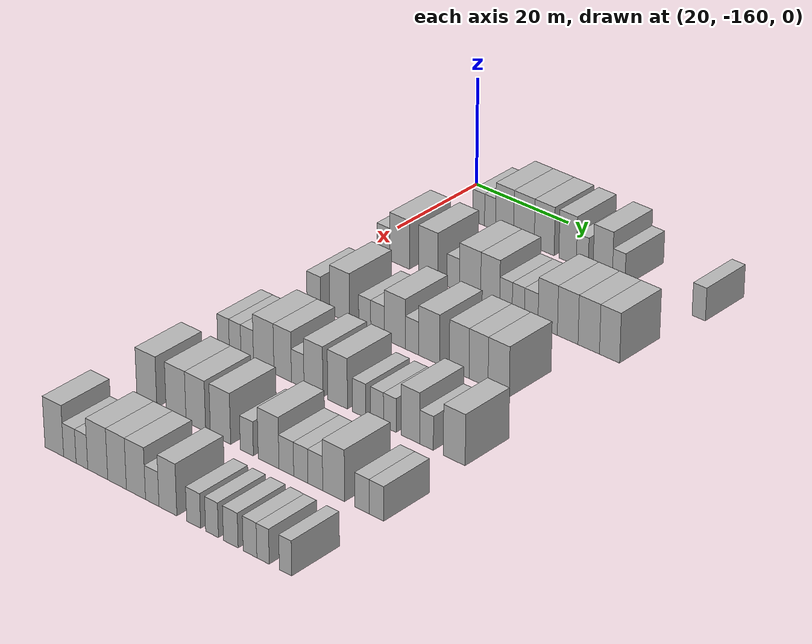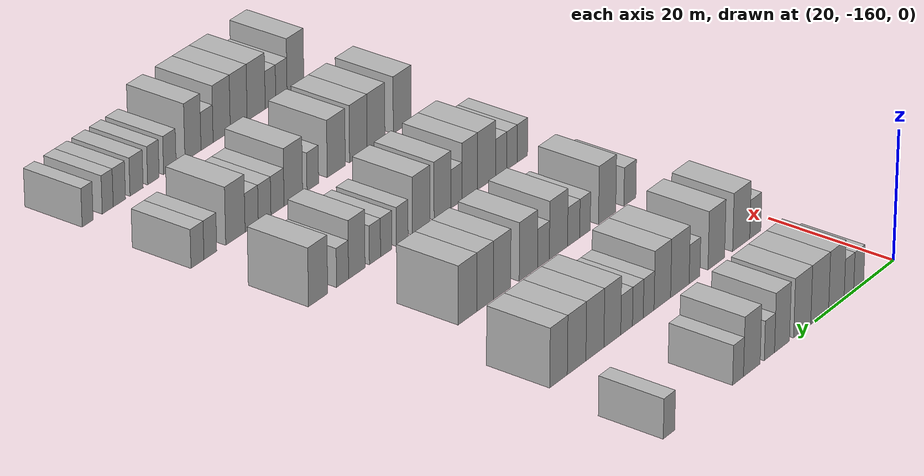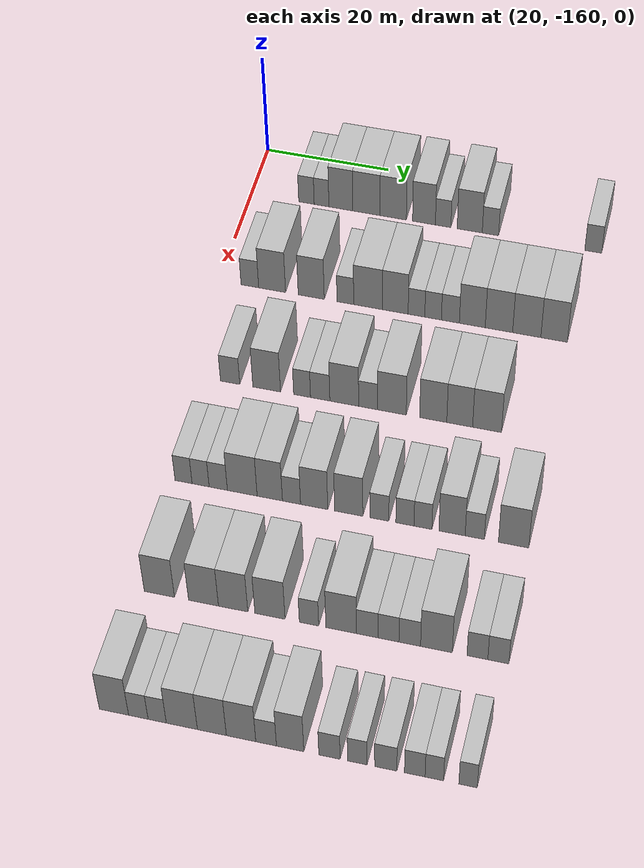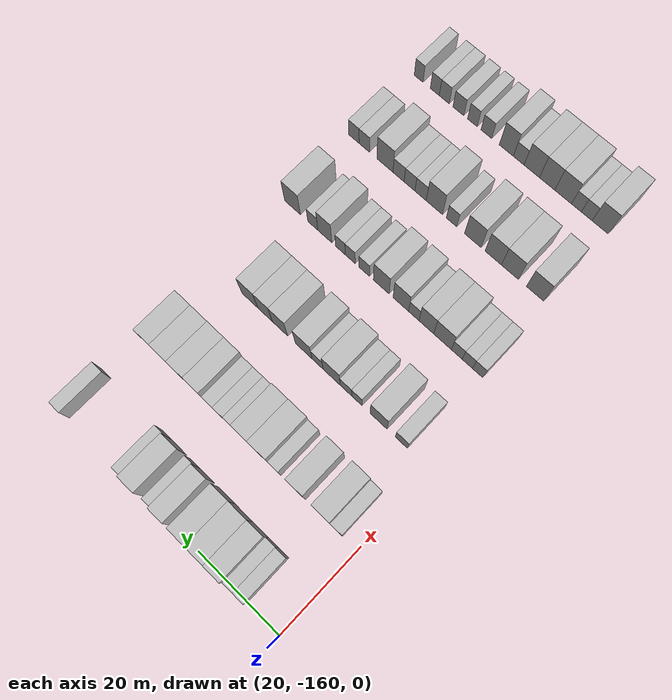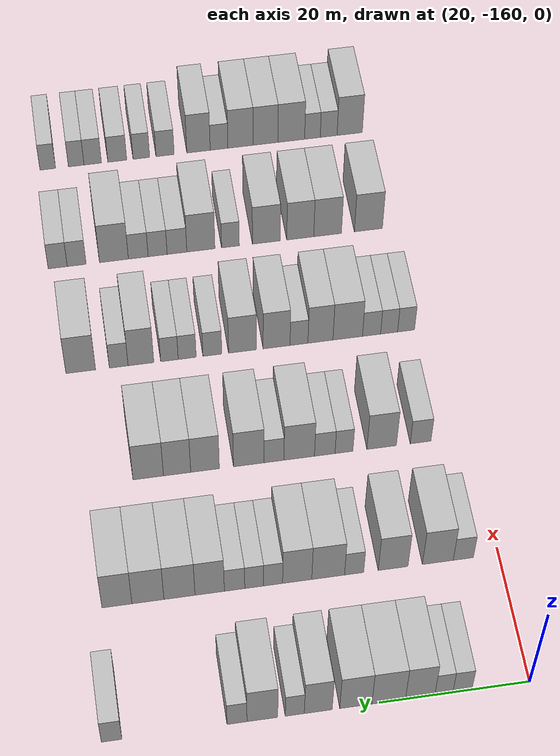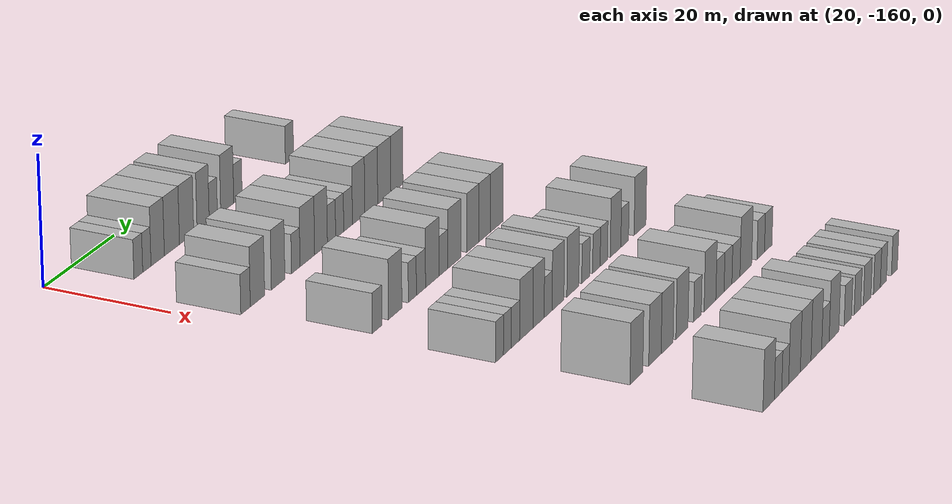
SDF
<sdf version="1.6">
 <world name="default">
  <model name="building_52">
   <static>1</static>
   <pose>25.0000 -150.9925 0 0.000000 0.000000 0.000000</pose>
   <link name="link">
    <pose>0 0 3.00 0 0 0</pose>
    <collision name="collision"><geometry><box><size>10.0000 2.5371 6.0000</size></box></geometry></collision>
    <visual name="visual">
     <cast_shadows>0</cast_shadows>
     <geometry><box><size>10.0000 2.5371 6.0000</size></box></geometry>
     <material>
      <script>
       <uri>model://HANNAS_wall/materials/scripts</uri>
       <uri>model://HANNAS_wall/materials/textures</uri>
       <name>vrc/HANNAS_wall</name>
      </script>
     </material>
    </visual>
   </link>
  </model>
  <model name="building_53">
   <static>1</static>
   <pose>25.0000 -148.5226 0 0.000000 0.000000 0.000000</pose>
   <link name="link">
    <pose>0 0 3.00 0 0 0</pose>
    <collision name="collision"><geometry><box><size>10.0000 2.4027 6.0000</size></box></geometry></collision>
    <visual name="visual">
     <cast_shadows>0</cast_shadows>
     <geometry><box><size>10.0000 2.4027 6.0000</size></box></geometry>
     <material>
      <script>
       <uri>model://HANNAS_wall/materials/scripts</uri>
       <uri>model://HANNAS_wall/materials/textures</uri>
       <name>vrc/HANNAS_wall</name>
      </script>
     </material>
    </visual>
   </link>
  </model>
  <model name="building_54">
   <static>1</static>
   <pose>25.0000 -145.3748 0 0.000000 0.000000 0.000000</pose>
   <link name="link">
    <pose>0 0 4.50 0 0 0</pose>
    <collision name="collision"><geometry><box><size>10.0000 3.8929 9.0000</size></box></geometry></collision>
    <visual name="visual">
     <cast_shadows>0</cast_shadows>
     <geometry><box><size>10.0000 3.8929 9.0000</size></box></geometry>
     <material>
      <script>
       <uri>model://HANNAS_wall/materials/scripts</uri>
       <uri>model://HANNAS_wall/materials/textures</uri>
       <name>vrc/HANNAS_wall</name>
      </script>
     </material>
    </visual>
   </link>
  </model>
  <model name="building_55">
   <static>1</static>
   <pose>25.0000 -141.2038 0 0.000000 0.000000 0.000000</pose>
   <link name="link">
    <pose>0 0 4.50 0 0 0</pose>
    <collision name="collision"><geometry><box><size>10.0000 4.4492 9.0000</size></box></geometry></collision>
    <visual name="visual">
     <cast_shadows>0</cast_shadows>
     <geometry><box><size>10.0000 4.4492 9.0000</size></box></geometry>
     <material>
      <script>
       <uri>model://HANNAS_wall/materials/scripts</uri>
       <uri>model://HANNAS_wall/materials/textures</uri>
       <name>vrc/HANNAS_wall</name>
      </script>
     </material>
    </visual>
   </link>
  </model>
  <model name="building_56">
   <static>1</static>
   <pose>25.0000 -136.8596 0 0.000000 0.000000 0.000000</pose>
   <link name="link">
    <pose>0 0 4.50 0 0 0</pose>
    <collision name="collision"><geometry><box><size>10.0000 4.2390 9.0000</size></box></geometry></collision>
    <visual name="visual">
     <cast_shadows>0</cast_shadows>
     <geometry><box><size>10.0000 4.2390 9.0000</size></box></geometry>
     <material>
      <script>
       <uri>model://HANNAS_wall/materials/scripts</uri>
       <uri>model://HANNAS_wall/materials/textures</uri>
       <name>vrc/HANNAS_wall</name>
      </script>
     </material>
    </visual>
   </link>
  </model>
  <model name="building_57">
   <static>1</static>
   <pose>25.0000 -131.9018 0 0.000000 0.000000 0.000000</pose>
   <link name="link">
    <pose>0 0 4.50 0 0 0</pose>
    <collision name="collision"><geometry><box><size>10.0000 3.6766 9.0000</size></box></geometry></collision>
    <visual name="visual">
     <cast_shadows>0</cast_shadows>
     <geometry><box><size>10.0000 3.6766 9.0000</size></box></geometry>
     <material>
      <script>
       <uri>model://HANNAS_wall/materials/scripts</uri>
       <uri>model://HANNAS_wall/materials/textures</uri>
       <name>vrc/HANNAS_wall</name>
      </script>
     </material>
    </visual>
   </link>
  </model>
  <model name="building_58">
   <static>1</static>
   <pose>25.0000 -128.8138 0 0.000000 0.000000 0.000000</pose>
   <link name="link">
    <pose>0 0 3.00 0 0 0</pose>
    <collision name="collision"><geometry><box><size>10.0000 2.4995 6.0000</size></box></geometry></collision>
    <visual name="visual">
     <cast_shadows>0</cast_shadows>
     <geometry><box><size>10.0000 2.4995 6.0000</size></box></geometry>
     <material>
      <script>
       <uri>model://HANNAS_wall/materials/scripts</uri>
       <uri>model://HANNAS_wall/materials/textures</uri>
       <name>vrc/HANNAS_wall</name>
      </script>
     </material>
    </visual>
   </link>
  </model>
  <model name="building_59">
   <static>1</static>
   <pose>25.0000 -124.5535 0 0.000000 0.000000 0.000000</pose>
   <link name="link">
    <pose>0 0 4.50 0 0 0</pose>
    <collision name="collision"><geometry><box><size>10.0000 4.0211 9.0000</size></box></geometry></collision>
    <visual name="visual">
     <cast_shadows>0</cast_shadows>
     <geometry><box><size>10.0000 4.0211 9.0000</size></box></geometry>
     <material>
      <script>
       <uri>model://HANNAS_wall/materials/scripts</uri>
       <uri>model://HANNAS_wall/materials/textures</uri>
       <name>vrc/HANNAS_wall</name>
      </script>
     </material>
    </visual>
   </link>
  </model>
  <model name="building_60">
   <static>1</static>
   <pose>25.0000 -121.2376 0 0.000000 0.000000 0.000000</pose>
   <link name="link">
    <pose>0 0 3.00 0 0 0</pose>
    <collision name="collision"><geometry><box><size>10.0000 2.6107 6.0000</size></box></geometry></collision>
    <visual name="visual">
     <cast_shadows>0</cast_shadows>
     <geometry><box><size>10.0000 2.6107 6.0000</size></box></geometry>
     <material>
      <script>
       <uri>model://HANNAS_wall/materials/scripts</uri>
       <uri>model://HANNAS_wall/materials/textures</uri>
       <name>vrc/HANNAS_wall</name>
      </script>
     </material>
    </visual>
   </link>
  </model>
  <model name="building_61">
   <static>1</static>
   <pose>25.0000 -104.9266 0 0.000000 0.000000 0.000000</pose>
   <link name="link">
    <pose>0 0 3.00 0 0 0</pose>
    <collision name="collision"><geometry><box><size>10.0000 2.6704 6.0000</size></box></geometry></collision>
    <visual name="visual">
     <cast_shadows>0</cast_shadows>
     <geometry><box><size>10.0000 2.6704 6.0000</size></box></geometry>
     <material>
      <script>
       <uri>model://HANNAS_wall/materials/scripts</uri>
       <uri>model://HANNAS_wall/materials/textures</uri>
       <name>vrc/HANNAS_wall</name>
      </script>
     </material>
    </visual>
   </link>
  </model>
  <model name="building_231">
   <static>1</static>
   <pose>44.0000 -155.1014 0 0.000000 0.000000 0.000000</pose>
   <link name="link">
    <pose>0 0 3.00 0 0 0</pose>
    <collision name="collision"><geometry><box><size>10.0000 2.8008 6.0000</size></box></geometry></collision>
    <visual name="visual">
     <cast_shadows>0</cast_shadows>
     <geometry><box><size>10.0000 2.8008 6.0000</size></box></geometry>
     <material>
      <script>
       <uri>model://HANNAS_wall/materials/scripts</uri>
       <uri>model://HANNAS_wall/materials/textures</uri>
       <name>vrc/HANNAS_wall</name>
      </script>
     </material>
    </visual>
   </link>
  </model>
  <model name="building_232">
   <static>1</static>
   <pose>44.0000 -151.5653 0 0.000000 0.000000 0.000000</pose>
   <link name="link">
    <pose>0 0 4.50 0 0 0</pose>
    <collision name="collision"><geometry><box><size>10.0000 4.2713 9.0000</size></box></geometry></collision>
    <visual name="visual">
     <cast_shadows>0</cast_shadows>
     <geometry><box><size>10.0000 4.2713 9.0000</size></box></geometry>
     <material>
      <script>
       <uri>model://HANNAS_wall/materials/scripts</uri>
       <uri>model://HANNAS_wall/materials/textures</uri>
       <name>vrc/HANNAS_wall</name>
      </script>
     </material>
    </visual>
   </link>
  </model>
  <model name="building_233">
   <static>1</static>
   <pose>44.0000 -145.3773 0 0.000000 0.000000 0.000000</pose>
   <link name="link">
    <pose>0 0 4.50 0 0 0</pose>
    <collision name="collision"><geometry><box><size>10.0000 4.1048 9.0000</size></box></geometry></collision>
    <visual name="visual">
     <cast_shadows>0</cast_shadows>
     <geometry><box><size>10.0000 4.1048 9.0000</size></box></geometry>
     <material>
      <script>
       <uri>model://HANNAS_wall/materials/scripts</uri>
       <uri>model://HANNAS_wall/materials/textures</uri>
       <name>vrc/HANNAS_wall</name>
      </script>
     </material>
    </visual>
   </link>
  </model>
  <model name="building_234">
   <static>1</static>
   <pose>44.0000 -140.0093 0 0.000000 0.000000 0.000000</pose>
   <link name="link">
    <pose>0 0 3.00 0 0 0</pose>
    <collision name="collision"><geometry><box><size>10.0000 2.6312 6.0000</size></box></geometry></collision>
    <visual name="visual">
     <cast_shadows>0</cast_shadows>
     <geometry><box><size>10.0000 2.6312 6.0000</size></box></geometry>
     <material>
      <script>
       <uri>model://HANNAS_wall/materials/scripts</uri>
       <uri>model://HANNAS_wall/materials/textures</uri>
       <name>vrc/HANNAS_wall</name>
      </script>
     </material>
    </visual>
   </link>
  </model>
  <model name="building_235">
   <static>1</static>
   <pose>44.0000 -136.4443 0 0.000000 0.000000 0.000000</pose>
   <link name="link">
    <pose>0 0 4.50 0 0 0</pose>
    <collision name="collision"><geometry><box><size>10.0000 4.4987 9.0000</size></box></geometry></collision>
    <visual name="visual">
     <cast_shadows>0</cast_shadows>
     <geometry><box><size>10.0000 4.4987 9.0000</size></box></geometry>
     <material>
      <script>
       <uri>model://HANNAS_wall/materials/scripts</uri>
       <uri>model://HANNAS_wall/materials/textures</uri>
       <name>vrc/HANNAS_wall</name>
      </script>
     </material>
    </visual>
   </link>
  </model>
  <model name="building_236">
   <static>1</static>
   <pose>44.0000 -132.1968 0 0.000000 0.000000 0.000000</pose>
   <link name="link">
    <pose>0 0 4.50 0 0 0</pose>
    <collision name="collision"><geometry><box><size>10.0000 3.9964 9.0000</size></box></geometry></collision>
    <visual name="visual">
     <cast_shadows>0</cast_shadows>
     <geometry><box><size>10.0000 3.9964 9.0000</size></box></geometry>
     <material>
      <script>
       <uri>model://HANNAS_wall/materials/scripts</uri>
       <uri>model://HANNAS_wall/materials/textures</uri>
       <name>vrc/HANNAS_wall</name>
      </script>
     </material>
    </visual>
   </link>
  </model>
  <model name="building_237">
   <static>1</static>
   <pose>44.0000 -128.9014 0 0.000000 0.000000 0.000000</pose>
   <link name="link">
    <pose>0 0 3.00 0 0 0</pose>
    <collision name="collision"><geometry><box><size>10.0000 2.5943 6.0000</size></box></geometry></collision>
    <visual name="visual">
     <cast_shadows>0</cast_shadows>
     <geometry><box><size>10.0000 2.5943 6.0000</size></box></geometry>
     <material>
      <script>
       <uri>model://HANNAS_wall/materials/scripts</uri>
       <uri>model://HANNAS_wall/materials/textures</uri>
       <name>vrc/HANNAS_wall</name>
      </script>
     </material>
    </visual>
   </link>
  </model>
  <model name="building_238">
   <static>1</static>
   <pose>44.0000 -126.3205 0 0.000000 0.000000 0.000000</pose>
   <link name="link">
    <pose>0 0 3.00 0 0 0</pose>
    <collision name="collision"><geometry><box><size>10.0000 2.5675 6.0000</size></box></geometry></collision>
    <visual name="visual">
     <cast_shadows>0</cast_shadows>
     <geometry><box><size>10.0000 2.5675 6.0000</size></box></geometry>
     <material>
      <script>
       <uri>model://HANNAS_wall/materials/scripts</uri>
       <uri>model://HANNAS_wall/materials/textures</uri>
       <name>vrc/HANNAS_wall</name>
      </script>
     </material>
    </visual>
   </link>
  </model>
  <model name="building_239">
   <static>1</static>
   <pose>44.0000 -123.6464 0 0.000000 0.000000 0.000000</pose>
   <link name="link">
    <pose>0 0 3.00 0 0 0</pose>
    <collision name="collision"><geometry><box><size>10.0000 2.7808 6.0000</size></box></geometry></collision>
    <visual name="visual">
     <cast_shadows>0</cast_shadows>
     <geometry><box><size>10.0000 2.7808 6.0000</size></box></geometry>
     <material>
      <script>
       <uri>model://HANNAS_wall/materials/scripts</uri>
       <uri>model://HANNAS_wall/materials/textures</uri>
       <name>vrc/HANNAS_wall</name>
      </script>
     </material>
    </visual>
   </link>
  </model>
  <model name="building_240">
   <static>1</static>
   <pose>44.0000 -120.2646 0 0.000000 0.000000 0.000000</pose>
   <link name="link">
    <pose>0 0 4.50 0 0 0</pose>
    <collision name="collision"><geometry><box><size>10.0000 3.9827 9.0000</size></box></geometry></collision>
    <visual name="visual">
     <cast_shadows>0</cast_shadows>
     <geometry><box><size>10.0000 3.9827 9.0000</size></box></geometry>
     <material>
      <script>
       <uri>model://HANNAS_wall/materials/scripts</uri>
       <uri>model://HANNAS_wall/materials/textures</uri>
       <name>vrc/HANNAS_wall</name>
      </script>
     </material>
    </visual>
   </link>
  </model>
  <model name="building_241">
   <static>1</static>
   <pose>44.0000 -116.1656 0 0.000000 0.000000 0.000000</pose>
   <link name="link">
    <pose>0 0 4.50 0 0 0</pose>
    <collision name="collision"><geometry><box><size>10.0000 4.2153 9.0000</size></box></geometry></collision>
    <visual name="visual">
     <cast_shadows>0</cast_shadows>
     <geometry><box><size>10.0000 4.2153 9.0000</size></box></geometry>
     <material>
      <script>
       <uri>model://HANNAS_wall/materials/scripts</uri>
       <uri>model://HANNAS_wall/materials/textures</uri>
       <name>vrc/HANNAS_wall</name>
      </script>
     </material>
    </visual>
   </link>
  </model>
  <model name="building_242">
   <static>1</static>
   <pose>44.0000 -111.8969 0 0.000000 0.000000 0.000000</pose>
   <link name="link">
    <pose>0 0 4.50 0 0 0</pose>
    <collision name="collision"><geometry><box><size>10.0000 4.3223 9.0000</size></box></geometry></collision>
    <visual name="visual">
     <cast_shadows>0</cast_shadows>
     <geometry><box><size>10.0000 4.3223 9.0000</size></box></geometry>
     <material>
      <script>
       <uri>model://HANNAS_wall/materials/scripts</uri>
       <uri>model://HANNAS_wall/materials/textures</uri>
       <name>vrc/HANNAS_wall</name>
      </script>
     </material>
    </visual>
   </link>
  </model>
  <model name="building_243">
   <static>1</static>
   <pose>44.0000 -107.7129 0 0.000000 0.000000 0.000000</pose>
   <link name="link">
    <pose>0 0 4.50 0 0 0</pose>
    <collision name="collision"><geometry><box><size>10.0000 4.0456 9.0000</size></box></geometry></collision>
    <visual name="visual">
     <cast_shadows>0</cast_shadows>
     <geometry><box><size>10.0000 4.0456 9.0000</size></box></geometry>
     <material>
      <script>
       <uri>model://HANNAS_wall/materials/scripts</uri>
       <uri>model://HANNAS_wall/materials/textures</uri>
       <name>vrc/HANNAS_wall</name>
      </script>
     </material>
    </visual>
   </link>
  </model>
  <model name="building_396">
   <static>1</static>
   <pose>63.0000 -152.9226 0 0.000000 0.000000 0.000000</pose>
   <link name="link">
    <pose>0 0 3.00 0 0 0</pose>
    <collision name="collision"><geometry><box><size>10.0000 2.9667 6.0000</size></box></geometry></collision>
    <visual name="visual">
     <cast_shadows>0</cast_shadows>
     <geometry><box><size>10.0000 2.9667 6.0000</size></box></geometry>
     <material>
      <script>
       <uri>model://HANNAS_wall/materials/scripts</uri>
       <uri>model://HANNAS_wall/materials/textures</uri>
       <name>vrc/HANNAS_wall</name>
      </script>
     </material>
    </visual>
   </link>
  </model>
  <model name="building_397">
   <static>1</static>
   <pose>63.0000 -147.3269 0 0.000000 0.000000 0.000000</pose>
   <link name="link">
    <pose>0 0 4.50 0 0 0</pose>
    <collision name="collision"><geometry><box><size>10.0000 4.2247 9.0000</size></box></geometry></collision>
    <visual name="visual">
     <cast_shadows>0</cast_shadows>
     <geometry><box><size>10.0000 4.2247 9.0000</size></box></geometry>
     <material>
      <script>
       <uri>model://HANNAS_wall/materials/scripts</uri>
       <uri>model://HANNAS_wall/materials/textures</uri>
       <name>vrc/HANNAS_wall</name>
      </script>
     </material>
    </visual>
   </link>
  </model>
  <model name="building_398">
   <static>1</static>
   <pose>63.0000 -141.9367 0 0.000000 0.000000 0.000000</pose>
   <link name="link">
    <pose>0 0 3.00 0 0 0</pose>
    <collision name="collision"><geometry><box><size>10.0000 2.5558 6.0000</size></box></geometry></collision>
    <visual name="visual">
     <cast_shadows>0</cast_shadows>
     <geometry><box><size>10.0000 2.5558 6.0000</size></box></geometry>
     <material>
      <script>
       <uri>model://HANNAS_wall/materials/scripts</uri>
       <uri>model://HANNAS_wall/materials/textures</uri>
       <name>vrc/HANNAS_wall</name>
      </script>
     </material>
    </visual>
   </link>
  </model>
  <model name="building_399">
   <static>1</static>
   <pose>63.0000 -139.1932 0 0.000000 0.000000 0.000000</pose>
   <link name="link">
    <pose>0 0 3.00 0 0 0</pose>
    <collision name="collision"><geometry><box><size>10.0000 2.9312 6.0000</size></box></geometry></collision>
    <visual name="visual">
     <cast_shadows>0</cast_shadows>
     <geometry><box><size>10.0000 2.9312 6.0000</size></box></geometry>
     <material>
      <script>
       <uri>model://HANNAS_wall/materials/scripts</uri>
       <uri>model://HANNAS_wall/materials/textures</uri>
       <name>vrc/HANNAS_wall</name>
      </script>
     </material>
    </visual>
   </link>
  </model>
  <model name="building_400">
   <static>1</static>
   <pose>63.0000 -135.5485 0 0.000000 0.000000 0.000000</pose>
   <link name="link">
    <pose>0 0 4.50 0 0 0</pose>
    <collision name="collision"><geometry><box><size>10.0000 4.3580 9.0000</size></box></geometry></collision>
    <visual name="visual">
     <cast_shadows>0</cast_shadows>
     <geometry><box><size>10.0000 4.3580 9.0000</size></box></geometry>
     <material>
      <script>
       <uri>model://HANNAS_wall/materials/scripts</uri>
       <uri>model://HANNAS_wall/materials/textures</uri>
       <name>vrc/HANNAS_wall</name>
      </script>
     </material>
    </visual>
   </link>
  </model>
  <model name="building_401">
   <static>1</static>
   <pose>63.0000 -131.9599 0 0.000000 0.000000 0.000000</pose>
   <link name="link">
    <pose>0 0 3.00 0 0 0</pose>
    <collision name="collision"><geometry><box><size>10.0000 2.8192 6.0000</size></box></geometry></collision>
    <visual name="visual">
     <cast_shadows>0</cast_shadows>
     <geometry><box><size>10.0000 2.8192 6.0000</size></box></geometry>
     <material>
      <script>
       <uri>model://HANNAS_wall/materials/scripts</uri>
       <uri>model://HANNAS_wall/materials/textures</uri>
       <name>vrc/HANNAS_wall</name>
      </script>
     </material>
    </visual>
   </link>
  </model>
  <model name="building_402">
   <static>1</static>
   <pose>63.0000 -128.3850 0 0.000000 0.000000 0.000000</pose>
   <link name="link">
    <pose>0 0 4.50 0 0 0</pose>
    <collision name="collision"><geometry><box><size>10.0000 4.3306 9.0000</size></box></geometry></collision>
    <visual name="visual">
     <cast_shadows>0</cast_shadows>
     <geometry><box><size>10.0000 4.3306 9.0000</size></box></geometry>
     <material>
      <script>
       <uri>model://HANNAS_wall/materials/scripts</uri>
       <uri>model://HANNAS_wall/materials/textures</uri>
       <name>vrc/HANNAS_wall</name>
      </script>
     </material>
    </visual>
   </link>
  </model>
  <model name="building_403">
   <static>1</static>
   <pose>63.0000 -122.1996 0 0.000000 0.000000 0.000000</pose>
   <link name="link">
    <pose>0 0 4.50 0 0 0</pose>
    <collision name="collision"><geometry><box><size>10.0000 4.0402 9.0000</size></box></geometry></collision>
    <visual name="visual">
     <cast_shadows>0</cast_shadows>
     <geometry><box><size>10.0000 4.0402 9.0000</size></box></geometry>
     <material>
      <script>
       <uri>model://HANNAS_wall/materials/scripts</uri>
       <uri>model://HANNAS_wall/materials/textures</uri>
       <name>vrc/HANNAS_wall</name>
      </script>
     </material>
    </visual>
   </link>
  </model>
  <model name="building_404">
   <static>1</static>
   <pose>63.0000 -118.2565 0 0.000000 0.000000 0.000000</pose>
   <link name="link">
    <pose>0 0 4.50 0 0 0</pose>
    <collision name="collision"><geometry><box><size>10.0000 3.8459 9.0000</size></box></geometry></collision>
    <visual name="visual">
     <cast_shadows>0</cast_shadows>
     <geometry><box><size>10.0000 3.8459 9.0000</size></box></geometry>
     <material>
      <script>
       <uri>model://HANNAS_wall/materials/scripts</uri>
       <uri>model://HANNAS_wall/materials/textures</uri>
       <name>vrc/HANNAS_wall</name>
      </script>
     </material>
    </visual>
   </link>
  </model>
  <model name="building_405">
   <static>1</static>
   <pose>63.0000 -114.1934 0 0.000000 0.000000 0.000000</pose>
   <link name="link">
    <pose>0 0 4.50 0 0 0</pose>
    <collision name="collision"><geometry><box><size>10.0000 4.2804 9.0000</size></box></geometry></collision>
    <visual name="visual">
     <cast_shadows>0</cast_shadows>
     <geometry><box><size>10.0000 4.2804 9.0000</size></box></geometry>
     <material>
      <script>
       <uri>model://HANNAS_wall/materials/scripts</uri>
       <uri>model://HANNAS_wall/materials/textures</uri>
       <name>vrc/HANNAS_wall</name>
      </script>
     </material>
    </visual>
   </link>
  </model>
  <model name="building_559">
   <static>1</static>
   <pose>82.0000 -154.4892 0 0.000000 0.000000 0.000000</pose>
   <link name="link">
    <pose>0 0 3.00 0 0 0</pose>
    <collision name="collision"><geometry><box><size>10.0000 2.5269 6.0000</size></box></geometry></collision>
    <visual name="visual">
     <cast_shadows>0</cast_shadows>
     <geometry><box><size>10.0000 2.5269 6.0000</size></box></geometry>
     <material>
      <script>
       <uri>model://HANNAS_wall/materials/scripts</uri>
       <uri>model://HANNAS_wall/materials/textures</uri>
       <name>vrc/HANNAS_wall</name>
      </script>
     </material>
    </visual>
   </link>
  </model>
  <model name="building_560">
   <static>1</static>
   <pose>82.0000 -151.9626 0 0.000000 0.000000 0.000000</pose>
   <link name="link">
    <pose>0 0 3.00 0 0 0</pose>
    <collision name="collision"><geometry><box><size>10.0000 2.5264 6.0000</size></box></geometry></collision>
    <visual name="visual">
     <cast_shadows>0</cast_shadows>
     <geometry><box><size>10.0000 2.5264 6.0000</size></box></geometry>
     <material>
      <script>
       <uri>model://HANNAS_wall/materials/scripts</uri>
       <uri>model://HANNAS_wall/materials/textures</uri>
       <name>vrc/HANNAS_wall</name>
      </script>
     </material>
    </visual>
   </link>
  </model>
  <model name="building_561">
   <static>1</static>
   <pose>82.0000 -149.3520 0 0.000000 0.000000 0.000000</pose>
   <link name="link">
    <pose>0 0 3.00 0 0 0</pose>
    <collision name="collision"><geometry><box><size>10.0000 2.6948 6.0000</size></box></geometry></collision>
    <visual name="visual">
     <cast_shadows>0</cast_shadows>
     <geometry><box><size>10.0000 2.6948 6.0000</size></box></geometry>
     <material>
      <script>
       <uri>model://HANNAS_wall/materials/scripts</uri>
       <uri>model://HANNAS_wall/materials/textures</uri>
       <name>vrc/HANNAS_wall</name>
      </script>
     </material>
    </visual>
   </link>
  </model>
  <model name="building_562">
   <static>1</static>
   <pose>82.0000 -145.8158 0 0.000000 0.000000 0.000000</pose>
   <link name="link">
    <pose>0 0 4.50 0 0 0</pose>
    <collision name="collision"><geometry><box><size>10.0000 4.3777 9.0000</size></box></geometry></collision>
    <visual name="visual">
     <cast_shadows>0</cast_shadows>
     <geometry><box><size>10.0000 4.3777 9.0000</size></box></geometry>
     <material>
      <script>
       <uri>model://HANNAS_wall/materials/scripts</uri>
       <uri>model://HANNAS_wall/materials/textures</uri>
       <name>vrc/HANNAS_wall</name>
      </script>
     </material>
    </visual>
   </link>
  </model>
  <model name="building_563">
   <static>1</static>
   <pose>82.0000 -141.7719 0 0.000000 0.000000 0.000000</pose>
   <link name="link">
    <pose>0 0 4.50 0 0 0</pose>
    <collision name="collision"><geometry><box><size>10.0000 3.7101 9.0000</size></box></geometry></collision>
    <visual name="visual">
     <cast_shadows>0</cast_shadows>
     <geometry><box><size>10.0000 3.7101 9.0000</size></box></geometry>
     <material>
      <script>
       <uri>model://HANNAS_wall/materials/scripts</uri>
       <uri>model://HANNAS_wall/materials/textures</uri>
       <name>vrc/HANNAS_wall</name>
      </script>
     </material>
    </visual>
   </link>
  </model>
  <model name="building_564">
   <static>1</static>
   <pose>82.0000 -138.5932 0 0.000000 0.000000 0.000000</pose>
   <link name="link">
    <pose>0 0 3.00 0 0 0</pose>
    <collision name="collision"><geometry><box><size>10.0000 2.6472 6.0000</size></box></geometry></collision>
    <visual name="visual">
     <cast_shadows>0</cast_shadows>
     <geometry><box><size>10.0000 2.6472 6.0000</size></box></geometry>
     <material>
      <script>
       <uri>model://HANNAS_wall/materials/scripts</uri>
       <uri>model://HANNAS_wall/materials/textures</uri>
       <name>vrc/HANNAS_wall</name>
      </script>
     </material>
    </visual>
   </link>
  </model>
  <model name="building_565">
   <static>1</static>
   <pose>82.0000 -135.2848 0 0.000000 0.000000 0.000000</pose>
   <link name="link">
    <pose>0 0 4.50 0 0 0</pose>
    <collision name="collision"><geometry><box><size>10.0000 3.9697 9.0000</size></box></geometry></collision>
    <visual name="visual">
     <cast_shadows>0</cast_shadows>
     <geometry><box><size>10.0000 3.9697 9.0000</size></box></geometry>
     <material>
      <script>
       <uri>model://HANNAS_wall/materials/scripts</uri>
       <uri>model://HANNAS_wall/materials/textures</uri>
       <name>vrc/HANNAS_wall</name>
      </script>
     </material>
    </visual>
   </link>
  </model>
  <model name="building_566">
   <static>1</static>
   <pose>82.0000 -130.2576 0 0.000000 0.000000 0.000000</pose>
   <link name="link">
    <pose>0 0 4.50 0 0 0</pose>
    <collision name="collision"><geometry><box><size>10.0000 4.0847 9.0000</size></box></geometry></collision>
    <visual name="visual">
     <cast_shadows>0</cast_shadows>
     <geometry><box><size>10.0000 4.0847 9.0000</size></box></geometry>
     <material>
      <script>
       <uri>model://HANNAS_wall/materials/scripts</uri>
       <uri>model://HANNAS_wall/materials/textures</uri>
       <name>vrc/HANNAS_wall</name>
      </script>
     </material>
    </visual>
   </link>
  </model>
  <model name="building_567">
   <static>1</static>
   <pose>82.0000 -125.8382 0 0.000000 0.000000 0.000000</pose>
   <link name="link">
    <pose>0 0 3.00 0 0 0</pose>
    <collision name="collision"><geometry><box><size>10.0000 2.7541 6.0000</size></box></geometry></collision>
    <visual name="visual">
     <cast_shadows>0</cast_shadows>
     <geometry><box><size>10.0000 2.7541 6.0000</size></box></geometry>
     <material>
      <script>
       <uri>model://HANNAS_wall/materials/scripts</uri>
       <uri>model://HANNAS_wall/materials/textures</uri>
       <name>vrc/HANNAS_wall</name>
      </script>
     </material>
    </visual>
   </link>
  </model>
  <model name="building_568">
   <static>1</static>
   <pose>82.0000 -122.1472 0 0.000000 0.000000 0.000000</pose>
   <link name="link">
    <pose>0 0 3.00 0 0 0</pose>
    <collision name="collision"><geometry><box><size>10.0000 2.6281 6.0000</size></box></geometry></collision>
    <visual name="visual">
     <cast_shadows>0</cast_shadows>
     <geometry><box><size>10.0000 2.6281 6.0000</size></box></geometry>
     <material>
      <script>
       <uri>model://HANNAS_wall/materials/scripts</uri>
       <uri>model://HANNAS_wall/materials/textures</uri>
       <name>vrc/HANNAS_wall</name>
      </script>
     </material>
    </visual>
   </link>
  </model>
  <model name="building_569">
   <static>1</static>
   <pose>82.0000 -119.5523 0 0.000000 0.000000 0.000000</pose>
   <link name="link">
    <pose>0 0 3.00 0 0 0</pose>
    <collision name="collision"><geometry><box><size>10.0000 2.5617 6.0000</size></box></geometry></collision>
    <visual name="visual">
     <cast_shadows>0</cast_shadows>
     <geometry><box><size>10.0000 2.5617 6.0000</size></box></geometry>
     <material>
      <script>
       <uri>model://HANNAS_wall/materials/scripts</uri>
       <uri>model://HANNAS_wall/materials/textures</uri>
       <name>vrc/HANNAS_wall</name>
      </script>
     </material>
    </visual>
   </link>
  </model>
  <model name="building_570">
   <static>1</static>
   <pose>82.0000 -115.3954 0 0.000000 0.000000 0.000000</pose>
   <link name="link">
    <pose>0 0 4.50 0 0 0</pose>
    <collision name="collision"><geometry><box><size>10.0000 3.7520 9.0000</size></box></geometry></collision>
    <visual name="visual">
     <cast_shadows>0</cast_shadows>
     <geometry><box><size>10.0000 3.7520 9.0000</size></box></geometry>
     <material>
      <script>
       <uri>model://HANNAS_wall/materials/scripts</uri>
       <uri>model://HANNAS_wall/materials/textures</uri>
       <name>vrc/HANNAS_wall</name>
      </script>
     </material>
    </visual>
   </link>
  </model>
  <model name="building_571">
   <static>1</static>
   <pose>82.0000 -112.1554 0 0.000000 0.000000 0.000000</pose>
   <link name="link">
    <pose>0 0 3.00 0 0 0</pose>
    <collision name="collision"><geometry><box><size>10.0000 2.7280 6.0000</size></box></geometry></collision>
    <visual name="visual">
     <cast_shadows>0</cast_shadows>
     <geometry><box><size>10.0000 2.7280 6.0000</size></box></geometry>
     <material>
      <script>
       <uri>model://HANNAS_wall/materials/scripts</uri>
       <uri>model://HANNAS_wall/materials/textures</uri>
       <name>vrc/HANNAS_wall</name>
      </script>
     </material>
    </visual>
   </link>
  </model>
  <model name="building_572">
   <static>1</static>
   <pose>82.0000 -106.6396 0 0.000000 0.000000 0.000000</pose>
   <link name="link">
    <pose>0 0 4.50 0 0 0</pose>
    <collision name="collision"><geometry><box><size>10.0000 4.3036 9.0000</size></box></geometry></collision>
    <visual name="visual">
     <cast_shadows>0</cast_shadows>
     <geometry><box><size>10.0000 4.3036 9.0000</size></box></geometry>
     <material>
      <script>
       <uri>model://HANNAS_wall/materials/scripts</uri>
       <uri>model://HANNAS_wall/materials/textures</uri>
       <name>vrc/HANNAS_wall</name>
      </script>
     </material>
    </visual>
   </link>
  </model>
  <model name="building_721">
   <static>1</static>
   <pose>101.0000 -152.3338 0 0.000000 0.000000 0.000000</pose>
   <link name="link">
    <pose>0 0 4.50 0 0 0</pose>
    <collision name="collision"><geometry><box><size>10.0000 4.3059 9.0000</size></box></geometry></collision>
    <visual name="visual">
     <cast_shadows>0</cast_shadows>
     <geometry><box><size>10.0000 4.3059 9.0000</size></box></geometry>
     <material>
      <script>
       <uri>model://HANNAS_wall/materials/scripts</uri>
       <uri>model://HANNAS_wall/materials/textures</uri>
       <name>vrc/HANNAS_wall</name>
      </script>
     </material>
    </visual>
   </link>
  </model>
  <model name="building_722">
   <static>1</static>
   <pose>101.0000 -146.0570 0 0.000000 0.000000 0.000000</pose>
   <link name="link">
    <pose>0 0 4.50 0 0 0</pose>
    <collision name="collision"><geometry><box><size>10.0000 4.2477 9.0000</size></box></geometry></collision>
    <visual name="visual">
     <cast_shadows>0</cast_shadows>
     <geometry><box><size>10.0000 4.2477 9.0000</size></box></geometry>
     <material>
      <script>
       <uri>model://HANNAS_wall/materials/scripts</uri>
       <uri>model://HANNAS_wall/materials/textures</uri>
       <name>vrc/HANNAS_wall</name>
      </script>
     </material>
    </visual>
   </link>
  </model>
  <model name="building_723">
   <static>1</static>
   <pose>101.0000 -141.8597 0 0.000000 0.000000 0.000000</pose>
   <link name="link">
    <pose>0 0 4.50 0 0 0</pose>
    <collision name="collision"><geometry><box><size>10.0000 4.1469 9.0000</size></box></geometry></collision>
    <visual name="visual">
     <cast_shadows>0</cast_shadows>
     <geometry><box><size>10.0000 4.1469 9.0000</size></box></geometry>
     <material>
      <script>
       <uri>model://HANNAS_wall/materials/scripts</uri>
       <uri>model://HANNAS_wall/materials/textures</uri>
       <name>vrc/HANNAS_wall</name>
      </script>
     </material>
    </visual>
   </link>
  </model>
  <model name="building_724">
   <static>1</static>
   <pose>101.0000 -136.6671 0 0.000000 0.000000 0.000000</pose>
   <link name="link">
    <pose>0 0 4.50 0 0 0</pose>
    <collision name="collision"><geometry><box><size>10.0000 4.2382 9.0000</size></box></geometry></collision>
    <visual name="visual">
     <cast_shadows>0</cast_shadows>
     <geometry><box><size>10.0000 4.2382 9.0000</size></box></geometry>
     <material>
      <script>
       <uri>model://HANNAS_wall/materials/scripts</uri>
       <uri>model://HANNAS_wall/materials/textures</uri>
       <name>vrc/HANNAS_wall</name>
      </script>
     </material>
    </visual>
   </link>
  </model>
  <model name="building_725">
   <static>1</static>
   <pose>101.0000 -131.1921 0 0.000000 0.000000 0.000000</pose>
   <link name="link">
    <pose>0 0 3.00 0 0 0</pose>
    <collision name="collision"><geometry><box><size>10.0000 2.7119 6.0000</size></box></geometry></collision>
    <visual name="visual">
     <cast_shadows>0</cast_shadows>
     <geometry><box><size>10.0000 2.7119 6.0000</size></box></geometry>
     <material>
      <script>
       <uri>model://HANNAS_wall/materials/scripts</uri>
       <uri>model://HANNAS_wall/materials/textures</uri>
       <name>vrc/HANNAS_wall</name>
      </script>
     </material>
    </visual>
   </link>
  </model>
  <model name="building_726">
   <static>1</static>
   <pose>101.0000 -126.7055 0 0.000000 0.000000 0.000000</pose>
   <link name="link">
    <pose>0 0 4.50 0 0 0</pose>
    <collision name="collision"><geometry><box><size>10.0000 4.2612 9.0000</size></box></geometry></collision>
    <visual name="visual">
     <cast_shadows>0</cast_shadows>
     <geometry><box><size>10.0000 4.2612 9.0000</size></box></geometry>
     <material>
      <script>
       <uri>model://HANNAS_wall/materials/scripts</uri>
       <uri>model://HANNAS_wall/materials/textures</uri>
       <name>vrc/HANNAS_wall</name>
      </script>
     </material>
    </visual>
   </link>
  </model>
  <model name="building_727">
   <static>1</static>
   <pose>101.0000 -123.0762 0 0.000000 0.000000 0.000000</pose>
   <link name="link">
    <pose>0 0 3.00 0 0 0</pose>
    <collision name="collision"><geometry><box><size>10.0000 2.9974 6.0000</size></box></geometry></collision>
    <visual name="visual">
     <cast_shadows>0</cast_shadows>
     <geometry><box><size>10.0000 2.9974 6.0000</size></box></geometry>
     <material>
      <script>
       <uri>model://HANNAS_wall/materials/scripts</uri>
       <uri>model://HANNAS_wall/materials/textures</uri>
       <name>vrc/HANNAS_wall</name>
      </script>
     </material>
    </visual>
   </link>
  </model>
  <model name="building_728">
   <static>1</static>
   <pose>101.0000 -120.1391 0 0.000000 0.000000 0.000000</pose>
   <link name="link">
    <pose>0 0 3.00 0 0 0</pose>
    <collision name="collision"><geometry><box><size>10.0000 2.8768 6.0000</size></box></geometry></collision>
    <visual name="visual">
     <cast_shadows>0</cast_shadows>
     <geometry><box><size>10.0000 2.8768 6.0000</size></box></geometry>
     <material>
      <script>
       <uri>model://HANNAS_wall/materials/scripts</uri>
       <uri>model://HANNAS_wall/materials/textures</uri>
       <name>vrc/HANNAS_wall</name>
      </script>
     </material>
    </visual>
   </link>
  </model>
  <model name="building_729">
   <static>1</static>
   <pose>101.0000 -117.2074 0 0.000000 0.000000 0.000000</pose>
   <link name="link">
    <pose>0 0 3.00 0 0 0</pose>
    <collision name="collision"><geometry><box><size>10.0000 2.9866 6.0000</size></box></geometry></collision>
    <visual name="visual">
     <cast_shadows>0</cast_shadows>
     <geometry><box><size>10.0000 2.9866 6.0000</size></box></geometry>
     <material>
      <script>
       <uri>model://HANNAS_wall/materials/scripts</uri>
       <uri>model://HANNAS_wall/materials/textures</uri>
       <name>vrc/HANNAS_wall</name>
      </script>
     </material>
    </visual>
   </link>
  </model>
  <model name="building_730">
   <static>1</static>
   <pose>101.0000 -113.5341 0 0.000000 0.000000 0.000000</pose>
   <link name="link">
    <pose>0 0 4.50 0 0 0</pose>
    <collision name="collision"><geometry><box><size>10.0000 4.3601 9.0000</size></box></geometry></collision>
    <visual name="visual">
     <cast_shadows>0</cast_shadows>
     <geometry><box><size>10.0000 4.3601 9.0000</size></box></geometry>
     <material>
      <script>
       <uri>model://HANNAS_wall/materials/scripts</uri>
       <uri>model://HANNAS_wall/materials/textures</uri>
       <name>vrc/HANNAS_wall</name>
      </script>
     </material>
    </visual>
   </link>
  </model>
  <model name="building_731">
   <static>1</static>
   <pose>101.0000 -107.9319 0 0.000000 0.000000 0.000000</pose>
   <link name="link">
    <pose>0 0 3.00 0 0 0</pose>
    <collision name="collision"><geometry><box><size>10.0000 2.8443 6.0000</size></box></geometry></collision>
    <visual name="visual">
     <cast_shadows>0</cast_shadows>
     <geometry><box><size>10.0000 2.8443 6.0000</size></box></geometry>
     <material>
      <script>
       <uri>model://HANNAS_wall/materials/scripts</uri>
       <uri>model://HANNAS_wall/materials/textures</uri>
       <name>vrc/HANNAS_wall</name>
      </script>
     </material>
    </visual>
   </link>
  </model>
  <model name="building_732">
   <static>1</static>
   <pose>101.0000 -105.0767 0 0.000000 0.000000 0.000000</pose>
   <link name="link">
    <pose>0 0 3.00 0 0 0</pose>
    <collision name="collision"><geometry><box><size>10.0000 2.8659 6.0000</size></box></geometry></collision>
    <visual name="visual">
     <cast_shadows>0</cast_shadows>
     <geometry><box><size>10.0000 2.8659 6.0000</size></box></geometry>
     <material>
      <script>
       <uri>model://HANNAS_wall/materials/scripts</uri>
       <uri>model://HANNAS_wall/materials/textures</uri>
       <name>vrc/HANNAS_wall</name>
      </script>
     </material>
    </visual>
   </link>
  </model>
  <model name="building_894">
   <static>1</static>
   <pose>120.0000 -152.8037 0 0.000000 0.000000 0.000000</pose>
   <link name="link">
    <pose>0 0 4.50 0 0 0</pose>
    <collision name="collision"><geometry><box><size>10.0000 4.0112 9.0000</size></box></geometry></collision>
    <visual name="visual">
     <cast_shadows>0</cast_shadows>
     <geometry><box><size>10.0000 4.0112 9.0000</size></box></geometry>
     <material>
      <script>
       <uri>model://HANNAS_wall/materials/scripts</uri>
       <uri>model://HANNAS_wall/materials/textures</uri>
       <name>vrc/HANNAS_wall</name>
      </script>
     </material>
    </visual>
   </link>
  </model>
  <model name="building_895">
   <static>1</static>
   <pose>120.0000 -149.4609 0 0.000000 0.000000 0.000000</pose>
   <link name="link">
    <pose>0 0 3.00 0 0 0</pose>
    <collision name="collision"><geometry><box><size>10.0000 2.6745 6.0000</size></box></geometry></collision>
    <visual name="visual">
     <cast_shadows>0</cast_shadows>
     <geometry><box><size>10.0000 2.6745 6.0000</size></box></geometry>
     <material>
      <script>
       <uri>model://HANNAS_wall/materials/scripts</uri>
       <uri>model://HANNAS_wall/materials/textures</uri>
       <name>vrc/HANNAS_wall</name>
      </script>
     </material>
    </visual>
   </link>
  </model>
  <model name="building_896">
   <static>1</static>
   <pose>120.0000 -146.8791 0 0.000000 0.000000 0.000000</pose>
   <link name="link">
    <pose>0 0 3.00 0 0 0</pose>
    <collision name="collision"><geometry><box><size>10.0000 2.4892 6.0000</size></box></geometry></collision>
    <visual name="visual">
     <cast_shadows>0</cast_shadows>
     <geometry><box><size>10.0000 2.4892 6.0000</size></box></geometry>
     <material>
      <script>
       <uri>model://HANNAS_wall/materials/scripts</uri>
       <uri>model://HANNAS_wall/materials/textures</uri>
       <name>vrc/HANNAS_wall</name>
      </script>
     </material>
    </visual>
   </link>
  </model>
  <model name="building_897">
   <static>1</static>
   <pose>120.0000 -143.5162 0 0.000000 0.000000 0.000000</pose>
   <link name="link">
    <pose>0 0 4.50 0 0 0</pose>
    <collision name="collision"><geometry><box><size>10.0000 4.2365 9.0000</size></box></geometry></collision>
    <visual name="visual">
     <cast_shadows>0</cast_shadows>
     <geometry><box><size>10.0000 4.2365 9.0000</size></box></geometry>
     <material>
      <script>
       <uri>model://HANNAS_wall/materials/scripts</uri>
       <uri>model://HANNAS_wall/materials/textures</uri>
       <name>vrc/HANNAS_wall</name>
      </script>
     </material>
    </visual>
   </link>
  </model>
  <model name="building_898">
   <static>1</static>
   <pose>120.0000 -139.4359 0 0.000000 0.000000 0.000000</pose>
   <link name="link">
    <pose>0 0 4.50 0 0 0</pose>
    <collision name="collision"><geometry><box><size>10.0000 3.9241 9.0000</size></box></geometry></collision>
    <visual name="visual">
     <cast_shadows>0</cast_shadows>
     <geometry><box><size>10.0000 3.9241 9.0000</size></box></geometry>
     <material>
      <script>
       <uri>model://HANNAS_wall/materials/scripts</uri>
       <uri>model://HANNAS_wall/materials/textures</uri>
       <name>vrc/HANNAS_wall</name>
      </script>
     </material>
    </visual>
   </link>
  </model>
  <model name="building_899">
   <static>1</static>
   <pose>120.0000 -135.4852 0 0.000000 0.000000 0.000000</pose>
   <link name="link">
    <pose>0 0 4.50 0 0 0</pose>
    <collision name="collision"><geometry><box><size>10.0000 3.9773 9.0000</size></box></geometry></collision>
    <visual name="visual">
     <cast_shadows>0</cast_shadows>
     <geometry><box><size>10.0000 3.9773 9.0000</size></box></geometry>
     <material>
      <script>
       <uri>model://HANNAS_wall/materials/scripts</uri>
       <uri>model://HANNAS_wall/materials/textures</uri>
       <name>vrc/HANNAS_wall</name>
      </script>
     </material>
    </visual>
   </link>
  </model>
  <model name="building_900">
   <static>1</static>
   <pose>120.0000 -132.1056 0 0.000000 0.000000 0.000000</pose>
   <link name="link">
    <pose>0 0 3.00 0 0 0</pose>
    <collision name="collision"><geometry><box><size>10.0000 2.7819 6.0000</size></box></geometry></collision>
    <visual name="visual">
     <cast_shadows>0</cast_shadows>
     <geometry><box><size>10.0000 2.7819 6.0000</size></box></geometry>
     <material>
      <script>
       <uri>model://HANNAS_wall/materials/scripts</uri>
       <uri>model://HANNAS_wall/materials/textures</uri>
       <name>vrc/HANNAS_wall</name>
      </script>
     </material>
    </visual>
   </link>
  </model>
  <model name="building_901">
   <static>1</static>
   <pose>120.0000 -128.8763 0 0.000000 0.000000 0.000000</pose>
   <link name="link">
    <pose>0 0 4.50 0 0 0</pose>
    <collision name="collision"><geometry><box><size>10.0000 3.6766 9.0000</size></box></geometry></collision>
    <visual name="visual">
     <cast_shadows>0</cast_shadows>
     <geometry><box><size>10.0000 3.6766 9.0000</size></box></geometry>
     <material>
      <script>
       <uri>model://HANNAS_wall/materials/scripts</uri>
       <uri>model://HANNAS_wall/materials/textures</uri>
       <name>vrc/HANNAS_wall</name>
      </script>
     </material>
    </visual>
   </link>
  </model>
  <model name="building_902">
   <static>1</static>
   <pose>120.0000 -123.6162 0 0.000000 0.000000 0.000000</pose>
   <link name="link">
    <pose>0 0 3.00 0 0 0</pose>
    <collision name="collision"><geometry><box><size>10.0000 2.8437 6.0000</size></box></geometry></collision>
    <visual name="visual">
     <cast_shadows>0</cast_shadows>
     <geometry><box><size>10.0000 2.8437 6.0000</size></box></geometry>
     <material>
      <script>
       <uri>model://HANNAS_wall/materials/scripts</uri>
       <uri>model://HANNAS_wall/materials/textures</uri>
       <name>vrc/HANNAS_wall</name>
      </script>
     </material>
    </visual>
   </link>
  </model>
  <model name="building_903">
   <static>1</static>
   <pose>120.0000 -119.8997 0 0.000000 0.000000 0.000000</pose>
   <link name="link">
    <pose>0 0 3.00 0 0 0</pose>
    <collision name="collision"><geometry><box><size>10.0000 2.5893 6.0000</size></box></geometry></collision>
    <visual name="visual">
     <cast_shadows>0</cast_shadows>
     <geometry><box><size>10.0000 2.5893 6.0000</size></box></geometry>
     <material>
      <script>
       <uri>model://HANNAS_wall/materials/scripts</uri>
       <uri>model://HANNAS_wall/materials/textures</uri>
       <name>vrc/HANNAS_wall</name>
      </script>
     </material>
    </visual>
   </link>
  </model>
  <model name="building_904">
   <static>1</static>
   <pose>120.0000 -116.1331 0 0.000000 0.000000 0.000000</pose>
   <link name="link">
    <pose>0 0 3.00 0 0 0</pose>
    <collision name="collision"><geometry><box><size>10.0000 2.9440 6.0000</size></box></geometry></collision>
    <visual name="visual">
     <cast_shadows>0</cast_shadows>
     <geometry><box><size>10.0000 2.9440 6.0000</size></box></geometry>
     <material>
      <script>
       <uri>model://HANNAS_wall/materials/scripts</uri>
       <uri>model://HANNAS_wall/materials/textures</uri>
       <name>vrc/HANNAS_wall</name>
      </script>
     </material>
    </visual>
   </link>
  </model>
  <model name="building_905">
   <static>1</static>
   <pose>120.0000 -112.3015 0 0.000000 0.000000 0.000000</pose>
   <link name="link">
    <pose>0 0 3.00 0 0 0</pose>
    <collision name="collision"><geometry><box><size>10.0000 2.7192 6.0000</size></box></geometry></collision>
    <visual name="visual">
     <cast_shadows>0</cast_shadows>
     <geometry><box><size>10.0000 2.7192 6.0000</size></box></geometry>
     <material>
      <script>
       <uri>model://HANNAS_wall/materials/scripts</uri>
       <uri>model://HANNAS_wall/materials/textures</uri>
       <name>vrc/HANNAS_wall</name>
      </script>
     </material>
    </visual>
   </link>
  </model>
  <model name="building_906">
   <static>1</static>
   <pose>120.0000 -109.7268 0 0.000000 0.000000 0.000000</pose>
   <link name="link">
    <pose>0 0 3.00 0 0 0</pose>
    <collision name="collision"><geometry><box><size>10.0000 2.4303 6.0000</size></box></geometry></collision>
    <visual name="visual">
     <cast_shadows>0</cast_shadows>
     <geometry><box><size>10.0000 2.4303 6.0000</size></box></geometry>
     <material>
      <script>
       <uri>model://HANNAS_wall/materials/scripts</uri>
       <uri>model://HANNAS_wall/materials/textures</uri>
       <name>vrc/HANNAS_wall</name>
      </script>
     </material>
    </visual>
   </link>
  </model>
  <model name="building_907">
   <static>1</static>
   <pose>120.0000 -105.3044 0 0.000000 0.000000 0.000000</pose>
   <link name="link">
    <pose>0 0 3.00 0 0 0</pose>
    <collision name="collision"><geometry><box><size>10.0000 2.4145 6.0000</size></box></geometry></collision>
    <visual name="visual">
     <cast_shadows>0</cast_shadows>
     <geometry><box><size>10.0000 2.4145 6.0000</size></box></geometry>
     <material>
      <script>
       <uri>model://HANNAS_wall/materials/scripts</uri>
       <uri>model://HANNAS_wall/materials/textures</uri>
       <name>vrc/HANNAS_wall</name>
      </script>
     </material>
    </visual>
   </link>
  </model>
 </world>
</sdf>
